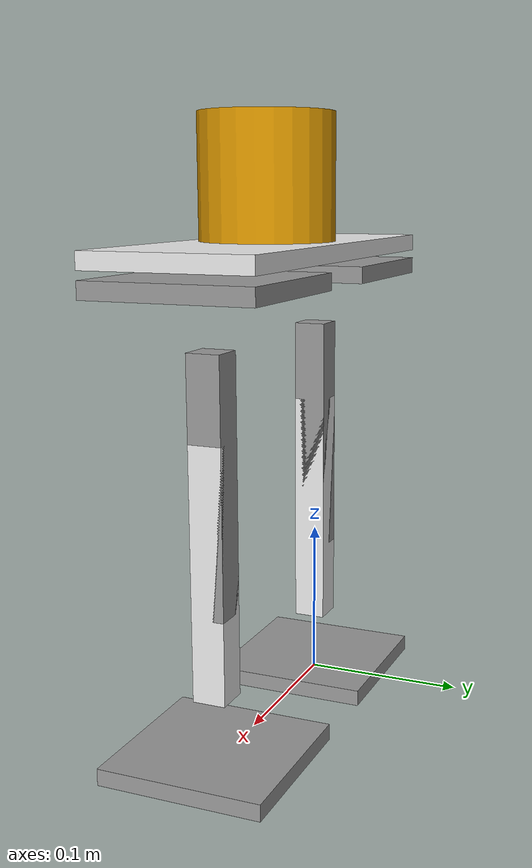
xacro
<?xml version="1.0"?>
<robot xmlns:xacro="http://www.ros.org/wiki/xacro" name="hyrecro">

  <gazebo reference="hyrecro">
    <static>true</static>
  </gazebo>

  <xacro:include filename="$(find hyrecro)/urdf/hyrecro_materials.xacro"/>
  <xacro:include filename="$(find hyrecro)/urdf/sensor/OUSTER/os1_128.urdf.xacro"/>
  <xacro:property name="PI"  value="3.1415926535897931"/>
  <xacro:property name="plat_size_x" value="0.1"/>
  <xacro:property name="plat_size_y" value="0.1"/>
  <xacro:property name="plat_size_z" value="0.01"/>
  <xacro:property name="hip_size_x" value="0.25"/>
  <xacro:property name="hip_size_y" value="0.1"/>
  <xacro:property name="hip_size_z" value="0.01"/>
  <xacro:property name="leg_diam" value="0.02"/>
  <xacro:property name="leg_max" value="0.3"/>
  <xacro:property name="leg_min" value="0.1"/>
  <xacro:property name="leg_z" value="${leg_max/2}"/>
  <xacro:property name="extra" value="0.05"/>
  <xacro:property name="fixed_leg" value="A"/>
  <xacro:property name="t" value="0.15"/>
  <xacro:property name="tobillo_h" value="0.04"/>

<!--LINKS DECLARATION-->

  <link name="base_link"/>

  <link name="joint_1A"/>
  <link name="joint_2A"/>
  <link name="theta_A"/>
  <link name="joint_1B"/>
  <link name="joint_2B"/>
  <link name="theta_B"/>

  <link name="plat_1A">

    <inertial>
      <origin xyz="0.0 0.0 0.0" rpy="0.0 0.0 0.0"/>
      <mass value="1.0"/>
      <inertia ixx="0.005" ixy="0.0" ixz="0.0" iyy="0.005" iyz="0.0" izz="0.005"/>
    </inertial>

    <visual>
      <origin xyz="0.0 0.0 0.0" rpy="0.0 0.0 0.0"/>
      <geometry>
          <box size="${plat_size_x} ${plat_size_y} ${plat_size_z}"/>
      </geometry>
      <material name="grey"/>
    </visual>

    <collision>
      <origin xyz="0.0 0.0 0.0" rpy="0.0 0.0 0.0"/>
      <geometry>
        <box size="${plat_size_x} ${plat_size_y} ${plat_size_z}"/>
      </geometry>
    </collision>

  </link>

  <link name="prism_1A">

    <inertial>
      <origin xyz="0.0 0.0 0.0" rpy="0.0 0.0 0.0"/>
      <mass value="1.0"/>
      <inertia ixx="0.005" ixy="0.0" ixz="0.0" iyy="0.005" iyz="0.0" izz="0.005"/>
    </inertial>

    <visual>
      <origin xyz="0.0 0.0 0.0" rpy="0.0 0.0 0.0"/>
      <geometry>
          <box size="${leg_diam} ${leg_diam} ${leg_z}"/>
      </geometry>
      <material name="white"/>
    </visual>

    <collision>
      <origin xyz="0.0 0.0 0.0" rpy="0.0 0.0 0.0"/>
      <geometry>
        <box size="${leg_diam} ${leg_diam} ${leg_z}"/>
      </geometry>
    </collision>

  </link>

  <link name="prism_2A">

    <inertial>
      <origin xyz="0.0 0.0 0.0" rpy="0.0 0.0 0.0"/>
      <mass value="1.0"/>
      <inertia ixx="0.005" ixy="0.0" ixz="0.0" iyy="0.005" iyz="0.0" izz="0.005"/>
    </inertial>

    <visual>
      <origin xyz="0.0 0.0 0.0" rpy="0.0 0.0 0.0"/>
      <geometry>
        <box size="${leg_diam} ${leg_diam} ${leg_z}"/>
      </geometry>
      <material name="grey"/>
    </visual>

    <collision>
      <origin xyz="0.0 0.0 0.0" rpy="0.0 0.0 0.0"/>
      <geometry>
        <box size="${leg_diam} ${leg_diam} ${leg_z}"/>
      </geometry>
    </collision>

  </link>

  <link name="plat_2A">

    <inertial>
      <origin xyz="0.0 0.0 0.0" rpy="0.0 0.0 0.0"/>
      <mass value="1.0"/>
      <inertia ixx="0.005" ixy="0.0" ixz="0.0" iyy="0.005" iyz="0.0" izz="0.005"/>
    </inertial>

    <visual>
      <origin xyz="0.0 0.0 0.0" rpy="0.0 0.0 0.0"/>
      <geometry>
        <box size="${plat_size_x} ${plat_size_y} ${plat_size_z}"/>
      </geometry>
      <material name="grey"/>
    </visual>

    <collision>
      <origin xyz="0.0 0.0 0.0" rpy="0.0 0.0 0.0"/>
      <geometry>
        <box size="${plat_size_x} ${plat_size_y} ${plat_size_z}"/>
      </geometry>
    </collision>

  </link>

  <link name="hip">

    <inertial>
      <origin xyz="0.0 0.0 0.0" rpy="0.0 0.0 0.0"/>
      <mass value="1.0"/>
      <inertia ixx="0.005" ixy="0.0" ixz="0.0" iyy="0.005" iyz="0.0" izz="0.005"/>
    </inertial>

    <visual>
      <origin xyz="0.0 0.0 0.0" rpy="0.0 0.0 0.0"/>
      <geometry>
        <box size="${hip_size_x} ${hip_size_y} ${hip_size_z}"/>
      </geometry>
      <material name="white"/>
    </visual>

    <collision>
      <origin xyz="0.0 0.0 0.0" rpy="0.0 0.0 0.0"/>
      <geometry>
        <box size="${hip_size_x} ${hip_size_y} ${hip_size_z}"/>
      </geometry>
    </collision>

  </link>

  <link name="plat_2B">

    <inertial>
      <origin xyz="0.0 0.0 0.0" rpy="0.0 0.0 0.0"/>
      <mass value="1.0"/>
      <inertia ixx="0.005" ixy="0.0" ixz="0.0" iyy="0.005" iyz="0.0" izz="0.005"/>
    </inertial>

    <visual>
      <origin xyz="0.0 0.0 0.0" rpy="0.0 0.0 0.0"/>
      <geometry>
        <box size="${plat_size_x} ${plat_size_y} ${plat_size_z}"/>
      </geometry>
      <material name="grey"/>
    </visual>

    <collision>
      <origin xyz="0.0 0.0 0.0" rpy="0.0 0.0 0.0"/>
      <geometry>
        <box size="${plat_size_x} ${plat_size_y} ${plat_size_z}"/>
      </geometry>
    </collision>

  </link>

  <link name="prism_2B">

    <inertial>
      <origin xyz="0.0 0.0 0.0" rpy="0.0 0.0 0.0"/>
      <mass value="1.0"/>
      <inertia ixx="0.005" ixy="0.0" ixz="0.0" iyy="0.005" iyz="0.0" izz="0.005"/>
    </inertial>

    <visual>
      <origin xyz="0.0 0.0 0.0" rpy="0.0 0.0 0.0"/>
      <geometry>
        <box size="${leg_diam} ${leg_diam} ${leg_z}"/>
      </geometry>
      <material name="grey"/>
    </visual>

    <collision>
      <origin xyz="0.0 0.0 0.0" rpy="0.0 0.0 0.0"/>
      <geometry>
        <box size="${leg_diam} ${leg_diam} ${leg_z}"/>
      </geometry>
    </collision>

  </link>

  <link name="prism_1B">

    <inertial>
      <origin xyz="0.0 0.0 0.0" rpy="0.0 0.0 0.0"/>
      <mass value="1.0"/>
      <inertia ixx="0.005" ixy="0.0" ixz="0.0" iyy="0.005" iyz="0.0" izz="0.005"/>
    </inertial>

    <visual>
      <origin xyz="0.0 0.0 0.0" rpy="0.0 0.0 0.0"/>
      <geometry>
          <box size="${leg_diam} ${leg_diam} ${leg_z}"/>
      </geometry>
      <material name="white"/>
    </visual>

    <collision>
      <origin xyz="0.0 0.0 0.0" rpy="0.0 0.0 0.0"/>
      <geometry>
        <box size="${leg_diam} ${leg_diam} ${leg_z}"/>
      </geometry>
    </collision>

  </link>

  <link name="plat_1B">

    <inertial>
      <origin xyz="0.0 0.0 0.0" rpy="0.0 0.0 0.0"/>
      <mass value="1.0"/>
      <inertia ixx="0.005" ixy="0.0" ixz="0.0" iyy="0.005" iyz="0.0" izz="0.005"/>
    </inertial>

    <visual>
      <origin xyz="0.0 0.0 0.0" rpy="0.0 0.0 0.0"/>
      <geometry>
          <box size="${plat_size_x} ${plat_size_y} ${plat_size_z}"/>
      </geometry>
      <material name="grey"/>
    </visual>

    <collision>
      <origin xyz="0.0 0.0 0.0" rpy="0.0 0.0 0.0"/>
      <geometry>
        <box size="${plat_size_x} ${plat_size_y} ${plat_size_z}"/>
      </geometry>
    </collision>

  </link>

<!--JOINTS DECLARATION-->

  <joint name="base_link_plat_1A" type="fixed">
    <parent link="base_link"/>
    <child link="plat_1A"/>
    <origin xyz="0.0 0.0 ${plat_size_z/2}" rpy="0.0 0.0 0.0"/>
  </joint>

  <joint name="q1" type="revolute">
    <parent link="plat_1A"/>
    <child link="joint_1A"/>
    <axis xyz="0.0 0.0 1.0"/>
    <origin xyz="0.0 0.0 ${tobillo_h - (plat_size_z/2)}" rpy="${PI/2} 0.0 0.0"/>
    <limit lower="-${PI/2}" upper="${PI/2}" effort="100" velocity="0.1"/>
  </joint>

  <joint name="prism_1A_joint_1A" type="fixed">
    <parent link="joint_1A"/>
    <child link="prism_1A"/>
    <origin xyz="0.0 ${leg_z/2} 0.0" rpy="-${PI/2} 0.0 0.0"/>
  </joint>

  <joint name="passive_prismatic_A" type="prismatic">
    <parent link="prism_1A"/>
    <child link="prism_2A"/>
    <axis xyz="0.0 0.0 1.0"/>
    <origin xyz="0.0 0.0 ${extra}" rpy="0.0 0.0 0.0"/>
    <limit lower="-${extra/2}" upper="${extra/2}" effort="100" velocity="0.1"/>
  </joint>

  <joint name="q2" type="revolute">
    <parent link="prism_2A"/>
    <child link="joint_2A"/>
    <origin xyz="0.0 0.0 ${leg_z/2}" rpy="${PI/2} 0.0 0.0"/>
    <axis xyz="0.0 0.0 1.0"/>
    <limit lower="-${PI/2}" upper="${PI/2}" effort="100" velocity="0.1"/>
  </joint>

  <joint name="joint_2_plat_2A" type="fixed">
    <origin xyz="0.0 ${tobillo_h-(plat_size_z/2)} 0.0" rpy="-${PI/2} 0.0 0.0"/>
    <parent link="joint_2A"/>
    <child link="plat_2A"/>
  </joint>

  <joint name="q3" type="revolute">
    <parent link="plat_2A"/>
    <child link="theta_A"/>
    <origin xyz="0.0 0.0 ${0.005+ ((plat_size_z+hip_size_z)/2)}" rpy="0.0 0.0 0.0"/>
    <axis xyz="0.0 0.0 1.0"/>
    <limit lower="-${PI}" upper="${PI}" effort="100" velocity="0.1"/>
  </joint>

  <joint name="theta_A_hip" type="fixed">
    <parent link="theta_A"/>
    <child link="hip"/>
    <origin xyz="${t/2} 0.0 0.0" rpy="0.0 0.0 0.0"/>
  </joint>

  <joint name="q4" type="revolute">
    <parent link="hip"/>
    <child link="theta_B"/>
    <origin xyz="${t/2} 0.0 0.0" rpy="0.0 0.0 0.0"/>
    <axis xyz="0.0 0.0 1.0"/>
    <limit lower="-${PI}" upper="${PI}" effort="100" velocity="0.1"/>
  </joint>

  <joint name="theta_B_plat_2B" type="fixed">
    <parent link="theta_B"/>
    <child link="plat_2B"/>
    <origin xyz="0.0 0.0 -${0.005+ ((plat_size_z+hip_size_z)/2)}" rpy="0.0 0.0 0.0"/>
  </joint>

  <joint name="q5" type="revolute">
    <parent link="plat_2B"/>
    <child link="joint_2B"/>
    <origin xyz="0.0 0.0 -${tobillo_h-(plat_size_z/2)}" rpy="${PI/2} 0.0 0.0"/>
    <axis xyz="0.0 0.0 1.0"/>
    <limit lower="-${PI/2}" upper="${PI/2}" effort="100" velocity="0.1"/>
  </joint>

  <joint name="joint_2B_prism_2B" type="fixed">
    <parent link="joint_2B"/>
    <child link="prism_2B"/>
    <origin xyz="0.0 -${leg_z/2} 0.0" rpy="-${PI/2} 0.0 0.0"/>

  </joint>

  <joint name="passive_prismatic_B" type="prismatic">
    <parent link="prism_2B"/>
    <child link="prism_1B"/>
    <axis xyz="0.0 0.0 1.0"/>
    <origin xyz="0.0 0.0 -${extra}" rpy="0.0 0.0 0.0"/>
    <limit lower="-${extra/2}" upper="${extra/2}" effort="100" velocity="0.1"/>
  </joint>

  <joint name="q6" type="revolute">
    <parent link="prism_1B"/>
    <child link="joint_1B"/>
    <origin xyz="0.0 0.0 -${leg_z/2}" rpy="${PI/2} 0.0 0.0"/>
    <axis xyz="0.0 0.0 1.0"/>
    <limit lower="-${PI/2}" upper="${PI/2}" effort="100" velocity="0.1"/>
  </joint>

  <joint name="joint_1B_plat_1B" type="fixed">
    <parent link="joint_1B"/>
    <child link="plat_1B"/>
    <origin xyz="0.0 -${tobillo_h - (plat_size_z/2)} 0.0" rpy="-${PI/2} 0.0 0.0"/>
  </joint>

  <gazebo reference="hyrecro">
    <material>Gzebo/Blue/</material>
  </gazebo>

  <xacro:OS1-128
    parent       = "hip"
    name         = "os1_sensor"
    topic_points = "/os1/pointCloud"
    topic_imu    = "/os1/imu"
    hz           = "10"
    lasers       = "128"
    samples      = "512"
    min_range    = "0.2"
    max_range    = "10.0"
    noise        = "0.008"
    min_angle    = "-${M_PI}"
    max_angle    = "${M_PI}"
    lidar_link   = "os1_lidar"
    imu_link     = "os1_imu"
    vfov_min     = "-0.3979"
    vfov_max     = "0.3979">
    <origin xyz="0.0 0.0 0.04175" rpy="0.0 0.0 0.0"/>
  </xacro:OS1-128>

  <gazebo>
    <plugin name="gazebo_ros_hyrecro_joints_controller" filename="libgazebo_ros_hyrecro_joints_controller.so"/>
  </gazebo>

    </robot>

  <!-- A CONFIGURATION -->

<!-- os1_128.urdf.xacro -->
<robot xmlns:xacro="http://www.ros.org/wiki/xacro" name="OS1-128">
  <xacro:property name="M_PI" value="3.1415926535897931" />
  <xacro:macro name="OS1-128" params="*origin parent:=base_link name:=os1_sensor topic_points:=/os1_cloud_node/points topic_imu:=/os1_cloud_node/imu hz:=10 lasers:=128 samples:=512 min_range:=0.8 max_range:=120.0 noise:=0.008 min_angle:=-${M_PI} max_angle:=${M_PI} lidar_link:=os1_lidar imu_link:=os1_imu vfov_min:=-0.3979 vfov_max:=0.3979">

    <joint name="${name}_mount_joint" type="fixed">
      <xacro:insert_block name="origin" />
      <parent link="${parent}"/>
      <child link="${name}"/>
    </joint>

    <link name="${name}">
      <inertial>
         <mass value="0.33"/>
         <origin xyz="0 0 0.0365" rpy="0 0 0" />
         <inertia ixx="0.000241148" ixy="0" ixz="0"
          iyy="0.000241148" iyz="0" izz="0.000264"/>
      </inertial>
      <collision name="base_collision">
         <origin xyz="0 0 0.0365" rpy="0 0 0" />
         <geometry>
 	        <cylinder radius="0.04" length="0.073"/>
         </geometry>
      </collision>
      <visual name="base_visual">
         <origin xyz="0 0 0.0" rpy="0 0 1.5707" />
         <geometry>
          <cylinder length="0.073" radius="0.04" />
         </geometry>
      </visual>
    </link>

    <link name="${imu_link}" />

    <link name="${lidar_link}" />

    <joint name="${name}_imu_link_joint" type="fixed">
      <parent link="${name}" />
      <child link="${imu_link}" />
      <origin xyz="0.006253 -0.011775 0.007645" rpy="0 0 0" />
    </joint>
    <gazebo reference="${imu_link}">
    </gazebo>

    <joint name="${name}_lidar_link_joint" type="fixed">
      <parent link="${name}" />
      <child link="${lidar_link}" />
      <origin xyz="0.0 0.0 0.03618" rpy="0 0 0" />
    </joint>

    <!-- Gazebo requires the ouster_gazebo_plugins package -->
    <gazebo reference="${name}">
        <sensor type="gpu_ray" name="${name}-OS1-128">
          <pose>0 0 0 0 0 0</pose>
          <visualize>false</visualize>
          <update_rate>${hz}</update_rate>
          <ray>
            <scan>
              <horizontal>
                <samples>${samples}</samples>
                <resolution>1</resolution>
                <min_angle>${min_angle}</min_angle>
                <max_angle>${max_angle}</max_angle>
              </horizontal>
              <vertical>
                <samples>${lasers}</samples>
                <resolution>1</resolution>
                <min_angle>${vfov_min}</min_angle>
                <max_angle>${vfov_max}</max_angle>
              </vertical>
            </scan>
            <range>
              <min>${min_range}</min>
              <max>${max_range}</max>
              <resolution>0.03</resolution>
            </range>
          </ray>
          <plugin name="gazebo_ros_laser_controller" filename="libgazebo_ros_ouster_gpu_laser.so">
            <topicName>${topic_points}</topicName>
            <frameName>${name}</frameName>
            <min_range>${min_range}</min_range>
            <max_range>${max_range}</max_range>
            <gaussianNoise>${noise}</gaussianNoise>
          </plugin>
        </sensor>
    </gazebo>

    <!-- IMU -->
  <gazebo>
    <plugin name="imu_controller" filename="libhector_gazebo_ros_imu.so">
      <robotNamespace>/</robotNamespace>
      <updateRate>100.0</updateRate>
      <bodyName>${imu_link}</bodyName>
      <topicName>${topic_imu}</topicName>
      <accelDrift>0.005 0.005 0.005</accelDrift>
      <accelGaussianNoise>0.005 0.005 0.005</accelGaussianNoise>
      <rateDrift>0.005 0.005 0.005 </rateDrift>
      <rateGaussianNoise>0.005 0.005 0.005 </rateGaussianNoise>
      <headingDrift>0.005</headingDrift>
      <headingGaussianNoise>0.005</headingGaussianNoise>
    </plugin>
  </gazebo>

  </xacro:macro>
</robot>
